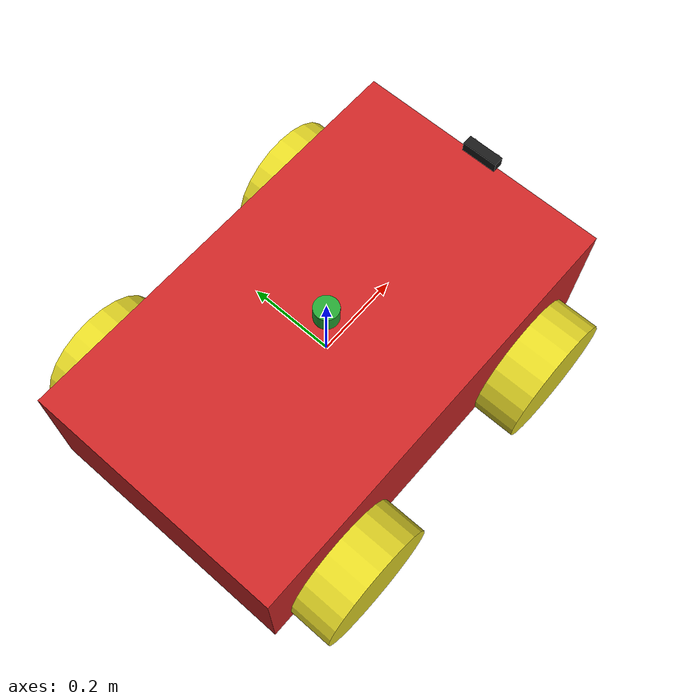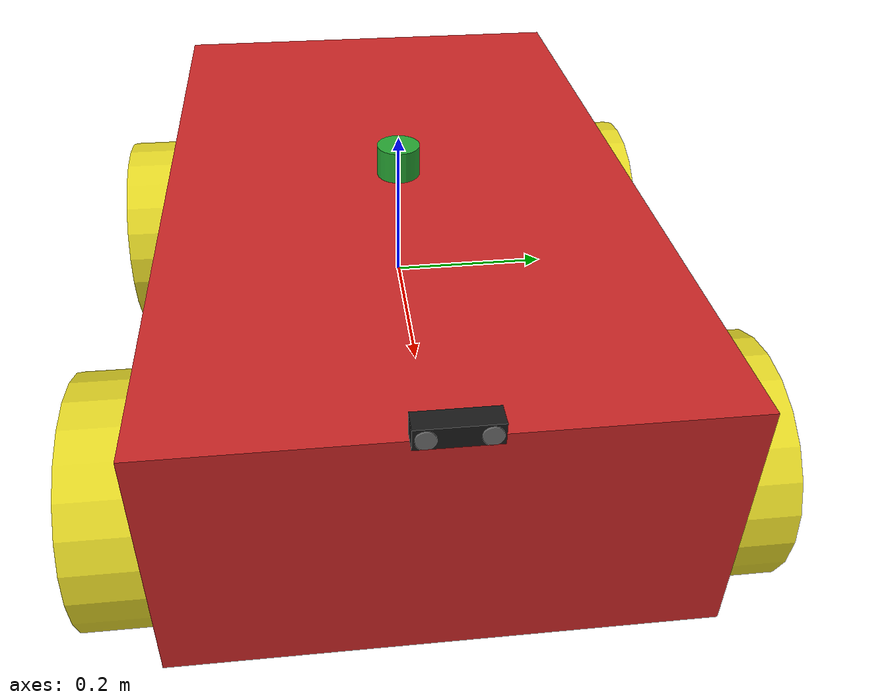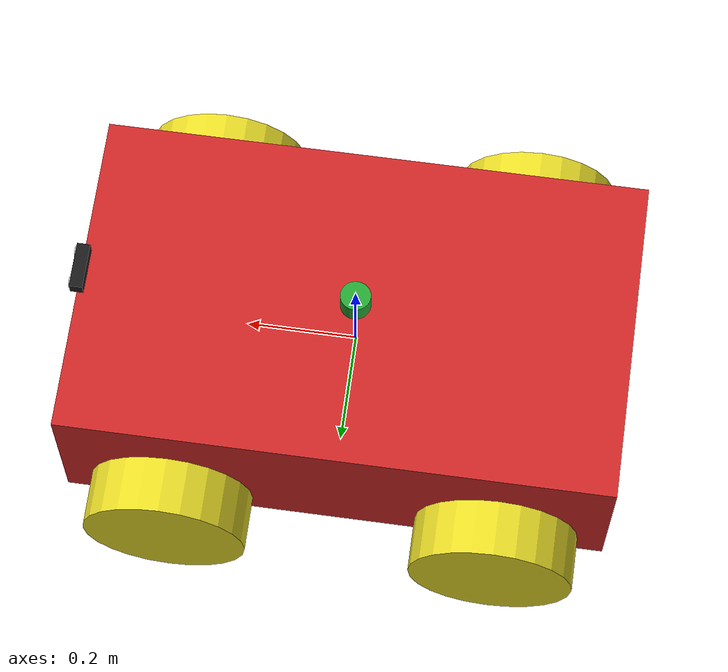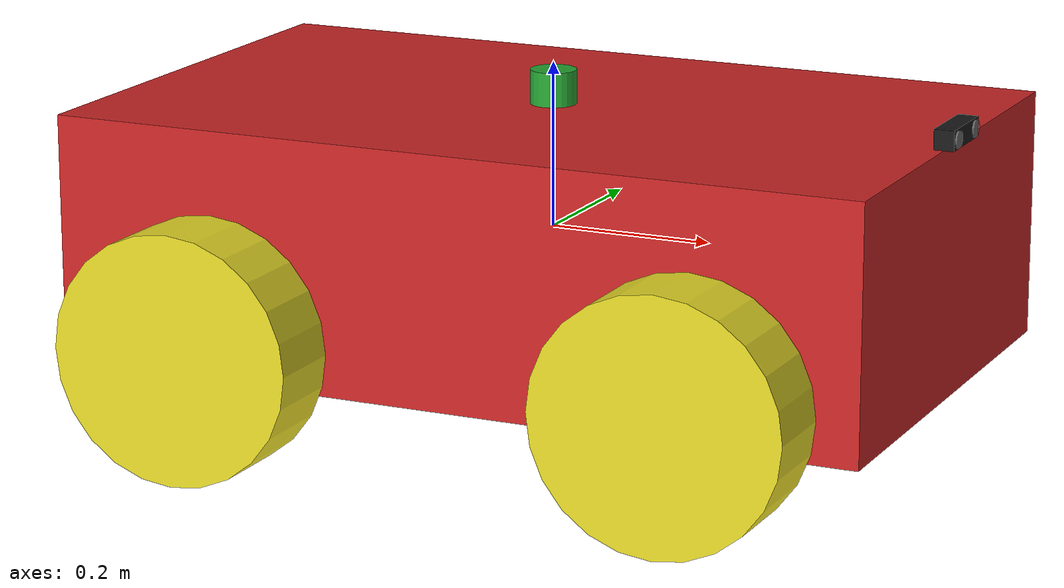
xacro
<?xml version="1.0"?>
<robot name="my_robot" xmlns:xacro="http://www.ros.org/wiki/xacro">

<!-- Body Dimensions -->
<xacro:property name="body_link_x_dim" value="1.0"/>
<xacro:property name="body_link_y_dim" value="0.6"/>
<xacro:property name="body_link_z_dim" value="0.3"/>

<!-- Wheel Dimensions & Locations -->
<xacro:property name="wheel_link_radius" value="0.15"/>
<xacro:property name="wheel_link_length" value="0.1"/>
<xacro:property name="wheel_link_z_location" value="-0.1"/>

<!-- Caster sphere dimensions and locations -->
<xacro:property name="caster_link_radius" value="0.15"/>
<xacro:property name="caster_link_z_location" value="0.1"/>

<!-- Material Density -->
<xacro:property name="body_density" value ="2710.0"/>
<xacro:property name="wheel_density" value ="2710.0"/>
<xacro:property name="caster_density" value ="2710.0"/>

<!-- pi constant -->
<xacro:property name="pi" value="3.14159265358979323846264338327950288419716"/>

<!-- body, wheel, caster mass -->
<xacro:property name="body_mass" value="${body_density*body_link_x_dim*body_link_y_dim*body_link_z_dim}" />
<xacro:property name="wheel_mass" value ="${wheel_density*pi*wheel_link_radius*wheel_link_radius*wheel_link_length}" />
<xacro:property name="caster_mass" value="${caster_density*(4.0/3.0)*pi*caster_link_radius*caster_link_radius*caster_link_radius}" />

<!-- Moments of inertia of the wheel -->
<xacro:property name="iz_wheel" value="${0.5*wheel_mass*wheel_link_radius*wheel_link_radius}" />
<xacro:property name="i_wheel" value="${(1.0/2.0)*wheel_mass*(3.0*wheel_link_radius*wheel_link_radius+wheel_link_length*wheel_link_length)}" />

<!-- Moments of inertia of the caster sphere -->
<xacro:property name="i_caster" value="${(2.0/5.0)*caster_mass*caster_link_radius*caster_link_radius}" />

<!-- Defining macro of the complete inertial section of the wheel -->
<xacro:macro name="inertia_wheel">
	<inertial>
		<origin rpy="0 0 0" xyz="0 0 0"/>
		<mass value="${wheel_mass}"/>
		<inertia ixx="${i_wheel}" ixy="0.0" ixz="0.0" iyy="${i_wheel}" iyz="0.0" izz="${iz_wheel}" />
	</inertial>
</xacro:macro>

<!-- Defining macro of the complete inertial section of the caster -->
<xacro:macro name="inertia_caster">
	<inertial>
		<origin rpy="0 0 0" xyz="0 0 0"/>
		<mass value="${caster_mass}"/>
		<inertia ixx="${i_caster}" ixy="0.0" ixz="0.0" iyy="${i_caster}" iyz="0.0" izz="${i_caster}" />
	</inertial>
</xacro:macro>

<!-- Here we include the file that defines extra Gazebo options and motion control driver -->

<xacro:include filename="$(find earendil_bot)/description/robot.gazebo" />

<!-- START links and joints:  -->
<!-- Body link of the robot -->

<link name="body_link">
	<visual>
		<geometry>
			<box size ="${body_link_x_dim} ${body_link_y_dim} ${body_link_z_dim}" />
		</geometry>
	<origin rpy="0 0 0" xyz="0 0 0"/>
	</visual>

	<collision>
		<geometry>
			<box size="${body_link_x_dim} ${body_link_y_dim} ${body_link_z_dim}" />
		</geometry>
		<origin rpy="0 0 0" xyz="0 0 0"/>
	</collision>

	<inertial>
		<origin rpy="0 0 0" xyz="0 0 0"/>
		<mass value="${body_mass}"/>
	<inertia
	ixx="${(1.0/12.0)*body_mass*(body_link_y_dim*body_link_y_dim+body_link_z_dim*body_link_z_dim)}" ixy="0.0" ixz="0.0" iyz="0.0" iyy="${(1.0/12.0)*body_mass*(body_link_x_dim*body_link_x_dim+body_link_z_dim*body_link_z_dim)}" izz="${(1.0/12.0)*body_mass*(body_link_y_dim*body_link_y_dim+body_link_x_dim*body_link_x_dim)}"
	/>
	</inertial>
</link>

<!-- End of body link -->
<!-- Starting base footprint link -->

<joint name="base_footprint_joint" type = "fixed">
	<parent link ="base_footprint"/>
	<child link="body_link"/>
	<origin xyz="0 0 0" rpy="0 0 0"/>
</joint>

<link name="base_footprint">
</link>

<!-- End of base footprint link -->
<!-- Starting back right wheel of the robot and joint  wheel1=brwheel wheel2=blwheel -->

<joint name="brwheel_joint" type="continuous" >
	<parent link="body_link"/>
	<child link="brwheel_link" />
	<origin xyz="${-2*wheel_link_radius} ${-body_link_y_dim/2-wheel_link_length/2} ${wheel_link_z_location}" rpy="0 0 0" />
	<axis xyz="0 1 0"/>
	<limit effort="1000.0" velocity="1000.0"/>
	<dynamics damping="0.0" friction="0.0"/>
</joint>

<link name="brwheel_link">
	<visual>
		<origin rpy="1.570795 0 0" xyz="0 0 0"/>
		<geometry>
			<cylinder length="${wheel_link_length}" radius="${wheel_link_radius}"/>
		</geometry>
	</visual>

	<collision>
		<origin rpy="1.570795 0 0" xyz="0 0 0"/>
		<geometry>
			<cylinder length="${wheel_link_length}" radius="${wheel_link_radius}" />
		</geometry>
	</collision>

	<xacro:inertia_wheel />
</link>

<!-- End of back right wheel link and joint -->
<!-- Starting left wheel of the robot and joint -->

<joint name="blwheel_joint" type="continuous" >
	<parent link="body_link"/>
	<child link="blwheel_link" />
	<origin xyz="${-2*wheel_link_radius} ${body_link_y_dim/2+wheel_link_length/2} ${wheel_link_z_location}" rpy="0 0 0" />
	<axis xyz="0 1 0"/>
	<limit effort="1000.0" velocity="1000.0"/>
	<dynamics damping="0.0" friction="0.0"/>
</joint>

<link name="blwheel_link">
	<visual>
		<origin rpy="1.570795 0 0" xyz="0 0 0"/>
		<geometry>
			<cylinder length="${wheel_link_length}" radius="${wheel_link_radius}"/>
		</geometry>
	</visual>

	<collision>
		<origin rpy="1.570795 0 0" xyz="0 0 0"/>
		<geometry>
			<cylinder length="${wheel_link_length}" radius="${wheel_link_radius}" />
		</geometry>
	</collision>

	<xacro:inertia_wheel />
</link>

<joint name="frwheel_joint" type="continuous" >
    <parent link="body_link"/>
    <child link="frwheel_link" />
    <origin xyz="${2*wheel_link_radius} ${-body_link_y_dim/2-wheel_link_length/2} ${wheel_link_z_location}" rpy="0 0 0" />
    <axis xyz="0 1 0"/>
    <limit effort="1000.0" velocity="1000.0"/>
    <dynamics damping="0.0" friction="0.0"/>
</joint>

<link name="frwheel_link">
    <visual>
        <origin rpy="1.570795 0 0" xyz="0 0 0"/>
        <geometry>
            <cylinder length="${wheel_link_length}" radius="${wheel_link_radius}"/>
        </geometry>
    </visual>

    <collision>
        <origin rpy="1.570795 0 0" xyz="0 0 0"/>
        <geometry>
            <cylinder length="${wheel_link_length}" radius="${wheel_link_radius}" />
        </geometry>
    </collision>

    <xacro:inertia_wheel />
</link>

<joint name="flwheel_joint" type="continuous" >
    <parent link="body_link"/>
    <child link="flwheel_link" />
    <origin xyz="${2*wheel_link_radius} ${body_link_y_dim/2+wheel_link_length/2} ${wheel_link_z_location}" rpy="0 0 0" />
    <axis xyz="0 1 0"/>
    <limit effort="1000.0" velocity="1000.0"/>
    <dynamics damping="0.0" friction="0.0"/>
</joint>

<link name="flwheel_link">
    <visual>
        <origin rpy="1.570795 0 0" xyz="0 0 0"/>
        <geometry>
            <cylinder length="${wheel_link_length}" radius="${wheel_link_radius}"/>
        </geometry>
    </visual>

    <collision>
        <origin rpy="1.570795 0 0" xyz="0 0 0"/>
        <geometry>
            <cylinder length="${wheel_link_length}" radius="${wheel_link_radius}" />
        </geometry>
    </collision>

    <xacro:inertia_wheel />
</link>

<!-- End of back left wheel link and joint -->
<!-- Starting LIDAR -->

<xacro:include filename="lidar.xacro" />

<!-- Starting Camera / IMU -->

<xacro:include filename="camera.xacro" />

<!-- Starting IMU -->

<xacro:include filename="imu.xacro" />

</robot>

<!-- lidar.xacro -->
<robot name="my_robot" xmlns:xacro="http://www.ros.org/wiki/xacro">

<!-- RPLIDAR C1 DTOF                                              -->
<!-- Specs: 5kHz sample rate, 10Hz scan, 0.05-12m range, 15mm res -->
<!--        55.6 x 55.6 x 41.3 mm, 110g                          -->

	<joint name="laser_joint" type="fixed">
		<parent link="body_link"/>
		<child link="laser_frame"/>
		<!-- Sits flush on top of body: body top is at z_dim/2 = 0.15, plus half lidar height -->
		<origin xyz="0 0 0.1707" rpy="0 0 0"/>
	</joint>

	<link name="laser_frame">
    <visual>
        <origin rpy="0 0 0" xyz="0 0 0"/>
        <geometry>
            <cylinder length="0.0413" radius="0.0278"/>
        </geometry>
    </visual>

    <collision>
        <origin rpy="0 0 0" xyz="0 0 0"/>
        <geometry>
            <cylinder length="0.0413" radius="0.0278"/>
        </geometry>
    </collision>

    <inertial>
        <origin rpy="0 0 0" xyz="0 0 0"/>
        <mass value="0.110"/>
        <inertia ixx="0.00002" ixy="0.0" ixz="0.0" iyy="0.00002" iyz="0.0" izz="0.00001"/>
    </inertial>
</link>

<gazebo reference="laser_frame">
	<sensor name="laser" type="ray">
		<pose> 0 0 0 0 0 0 </pose>
		<visualize>true</visualize>
		<update_rate>10</update_rate>
		<ray>
			<scan>
				<horizontal>
					<samples>500</samples>
					<resolution>1</resolution>
					<min_angle>-${pi}</min_angle>
					<max_angle>${pi}</max_angle>
				</horizontal>
			</scan>
			<range>
				<min>0.6</min>
				<max>12.0</max>
				<resolution>0.015</resolution>
			</range>
		</ray>
		<plugin name="laser_controller" filename="libgazebo_ros_ray_sensor.so">
			<ros>
				<argument>~/out:=scan</argument>
			</ros>
			<output_type>sensor_msgs/LaserScan</output_type>
			<frame_name>laser_frame</frame_name>
		</plugin>
	</sensor>
</gazebo>

</robot>

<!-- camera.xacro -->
<robot xmlns:xacro="http://www.ros.org/wiki/xacro" >

    <!-- Physical dimensions of IMX219-83 module -->
    <xacro:property name="cam_length" value="0.085" />
    <xacro:property name="cam_width"  value="0.024" />
    <xacro:property name="cam_height" value="0.024" />

    <joint name="camera_joint" type="fixed">
        <parent link="body_link"/>
        <child link="camera_link"/>
        <!-- Placed at the front, sitting on top of the rover body -->
        <origin xyz="${body_link_x_dim/2} 0 ${body_link_z_dim/2 + cam_height/2}" rpy="0 0 0"/>
    </joint>

    <link name="camera_link">
        <visual>
            <geometry>
                <box size="${cam_width} ${cam_length} ${cam_height}"/>
            </geometry>
            <material name="black">
                <color rgba="0.1 0.1 0.1 1"/>
            </material>
        </visual>

        <visual>
            <origin xyz="0.012 0.03 0" rpy="0 1.5708 0"/>
            <geometry>
                <cylinder radius="0.01" length="0.005"/>
            </geometry>
            <material name="glass">
                <color rgba="0.8 0.8 0.8 0.5"/>
            </material>
        </visual>

        <visual>
            <origin xyz="0.012 -0.03 0" rpy="0 1.5708 0"/>
            <geometry>
                <cylinder radius="0.01" length="0.005"/>
            </geometry>
            <material name="glass"/>
        </visual>

        <collision>
            <geometry>
                <box size="${cam_width} ${cam_length} ${cam_height}"/>
            </geometry>
        </collision>

        <inertial>
            <mass value="0.05" />
            <inertia ixx="0.00001" ixy="0" ixz="0" iyy="0.00001" iyz="0" izz="0.00001" />
        </inertial>
    </link>

    <!-- Needed for optical frame orientations in ROS -->
    <joint name="camera_optical_joint" type="fixed">
        <parent link="camera_link"/>
        <child link="camera_link_optical"/>
        <origin xyz="0 0 0" rpy="${-pi/2} 0 ${-pi/2}"/>
    </joint>

    <link name="camera_link_optical"></link>

    <gazebo reference="camera_link">
        <material>Gazebo/Black</material>

        <!-- RGB-D Camera Sensor -->
        <!-- Publishes:
             /camera/image_raw
             /camera/camera_info
             /camera/depth/image_raw
             /camera/depth/camera_info
             /camera/points
        -->
        <sensor name="camera" type="depth">
            <pose> 0 0 0 0 0 0 </pose>
            <visualize>true</visualize>
            <update_rate>15</update_rate>
            <camera>
                <horizontal_fov>1.274</horizontal_fov> <!-- 73 degrees horizontal FOV -->
                <image>
                    <format>R8G8B8</format>
                    <width>640</width>
                    <height>480</height>
                </image>
                <depth_camera>
                </depth_camera>
                <clip>
                    <near>0.05</near>
                    <far>8.0</far>
                </clip>
            </camera>
            <plugin name="camera_controller" filename="libgazebo_ros_camera.so">
                <camera_name>camera</camera_name>
                <frame_name>camera_link_optical</frame_name>
                <min_depth>0.15</min_depth>
                <max_depth>8.0</max_depth>
            </plugin>
        </sensor>
    </gazebo>

</robot>
